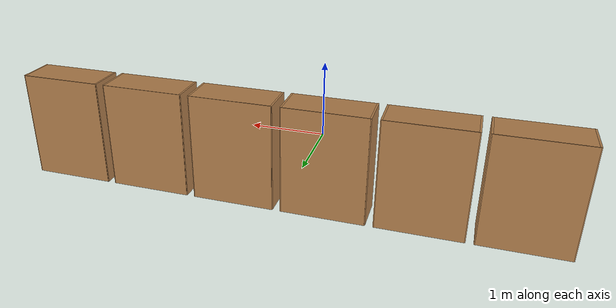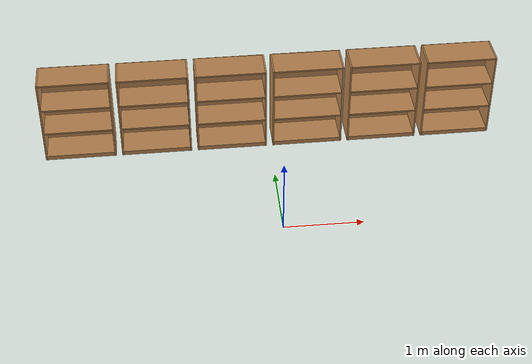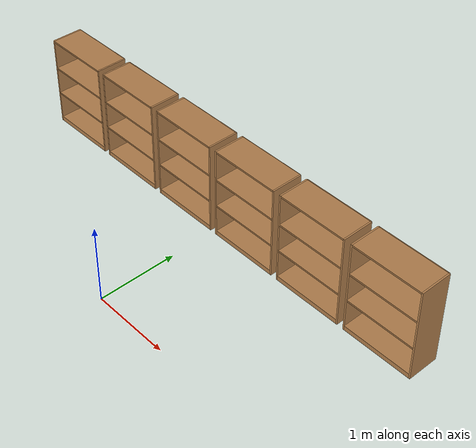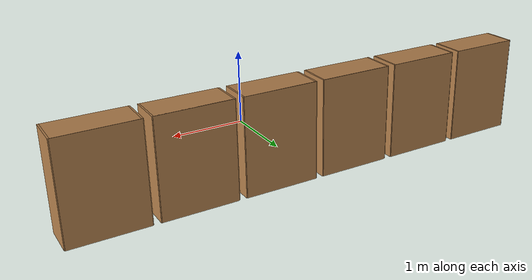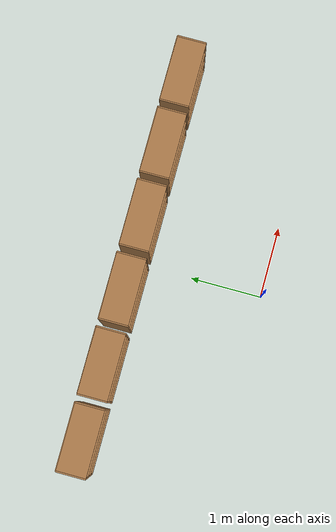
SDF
<sdf version="1.6">
 <model name="5Bookshelves">
  <model name="BookshelfRow_3">
   <model name="bookshelf">
    <static>1</static>
    <link name="link">
     <inertial><mass>1</mass></inertial>
     <collision name="back">
      <pose>0 0.005 0.6 0 -0 0</pose>
      <geometry><box><size>0.9 0.01 1.2</size></box></geometry>
     </collision>
     <visual name="visual1">
      <pose>0 0.005 0.6 0 -0 0</pose>
      <geometry><box><size>0.9 0.01 1.2</size></box></geometry>
      <material>
       <script><uri>file://media/materials/scripts/gazebo.material</uri><name>Gazebo/Wood</name></script>
      </material>
     </visual>
     <collision name="left_side">
      <pose>0.45 -0.195 0.6 0 -0 0</pose>
      <geometry><box><size>0.02 0.4 1.2</size></box></geometry>
     </collision>
     <visual name="visual2">
      <pose>0.45 -0.195 0.6 0 -0 0</pose>
      <geometry><box><size>0.02 0.4 1.2</size></box></geometry>
      <material>
       <script><uri>file://media/materials/scripts/gazebo.material</uri><name>Gazebo/Wood</name></script>
      </material>
     </visual>
     <collision name="right_side">
      <pose>-0.45 -0.195 0.6 0 -0 0</pose>
      <geometry><box><size>0.02 0.4 1.2</size></box></geometry>
     </collision>
     <visual name="visual3">
      <pose>-0.45 -0.195 0.6 0 -0 0</pose>
      <geometry><box><size>0.02 0.4 1.2</size></box></geometry>
      <material>
       <script><uri>file://media/materials/scripts/gazebo.material</uri><name>Gazebo/Wood</name></script>
      </material>
     </visual>
     <collision name="bottom">
      <pose>0 -0.195 0.03 0 -0 0</pose>
      <geometry><box><size>0.88 0.4 0.06</size></box></geometry>
     </collision>
     <visual name="visual4">
      <pose>0 -0.195 0.03 0 -0 0</pose>
      <geometry><box><size>0.88 0.4 0.06</size></box></geometry>
      <material>
       <script><uri>file://media/materials/scripts/gazebo.material</uri><name>Gazebo/Wood</name></script>
      </material>
     </visual>
     <collision name="top">
      <pose>0 -0.195 1.19 0 -0 0</pose>
      <geometry><box><size>0.88 0.4 0.02</size></box></geometry>
     </collision>
     <visual name="visual5">
      <pose>0 -0.195 1.19 0 -0 0</pose>
      <geometry><box><size>0.88 0.4 0.02</size></box></geometry>
      <material>
       <script><uri>file://media/materials/scripts/gazebo.material</uri><name>Gazebo/Wood</name></script>
      </material>
     </visual>
     <collision name="low_shelf">
      <pose>0 -0.195 0.43 0 -0 0</pose>
      <geometry><box><size>0.88 0.4 0.02</size></box></geometry>
     </collision>
     <visual name="visual6">
      <pose>0 -0.195 0.43 0 -0 0</pose>
      <geometry><box><size>0.88 0.4 0.02</size></box></geometry>
      <material>
       <script><uri>file://media/materials/scripts/gazebo.material</uri><name>Gazebo/Wood</name></script>
      </material>
     </visual>
     <collision name="high_shelf">
      <pose>0 -0.195 0.8 0 -0 0</pose>
      <geometry><box><size>0.88 0.4 0.02</size></box></geometry>
     </collision>
     <visual name="visual7">
      <pose>0 -0.195 0.8 0 -0 0</pose>
      <geometry><box><size>0.88 0.4 0.02</size></box></geometry>
      <material>
       <script><uri>file://media/materials/scripts/gazebo.material</uri><name>Gazebo/Wood</name></script>
      </material>
     </visual>
    </link>
    <pose>-2.5 0 0 0 -0 0</pose>
   </model>
   <model name="bookshelf_0">
    <static>1</static>
    <link name="link">
     <inertial><mass>1</mass></inertial>
     <collision name="back">
      <pose>0 0.005 0.6 0 -0 0</pose>
      <geometry><box><size>0.9 0.01 1.2</size></box></geometry>
     </collision>
     <visual name="visual1">
      <pose>0 0.005 0.6 0 -0 0</pose>
      <geometry><box><size>0.9 0.01 1.2</size></box></geometry>
      <material>
       <script><uri>file://media/materials/scripts/gazebo.material</uri><name>Gazebo/Wood</name></script>
      </material>
     </visual>
     <collision name="left_side">
      <pose>0.45 -0.195 0.6 0 -0 0</pose>
      <geometry><box><size>0.02 0.4 1.2</size></box></geometry>
     </collision>
     <visual name="visual2">
      <pose>0.45 -0.195 0.6 0 -0 0</pose>
      <geometry><box><size>0.02 0.4 1.2</size></box></geometry>
      <material>
       <script><uri>file://media/materials/scripts/gazebo.material</uri><name>Gazebo/Wood</name></script>
      </material>
     </visual>
     <collision name="right_side">
      <pose>-0.45 -0.195 0.6 0 -0 0</pose>
      <geometry><box><size>0.02 0.4 1.2</size></box></geometry>
     </collision>
     <visual name="visual3">
      <pose>-0.45 -0.195 0.6 0 -0 0</pose>
      <geometry><box><size>0.02 0.4 1.2</size></box></geometry>
      <material>
       <script><uri>file://media/materials/scripts/gazebo.material</uri><name>Gazebo/Wood</name></script>
      </material>
     </visual>
     <collision name="bottom">
      <pose>0 -0.195 0.03 0 -0 0</pose>
      <geometry><box><size>0.88 0.4 0.06</size></box></geometry>
     </collision>
     <visual name="visual4">
      <pose>0 -0.195 0.03 0 -0 0</pose>
      <geometry><box><size>0.88 0.4 0.06</size></box></geometry>
      <material>
       <script><uri>file://media/materials/scripts/gazebo.material</uri><name>Gazebo/Wood</name></script>
      </material>
     </visual>
     <collision name="top">
      <pose>0 -0.195 1.19 0 -0 0</pose>
      <geometry><box><size>0.88 0.4 0.02</size></box></geometry>
     </collision>
     <visual name="visual5">
      <pose>0 -0.195 1.19 0 -0 0</pose>
      <geometry><box><size>0.88 0.4 0.02</size></box></geometry>
      <material>
       <script><uri>file://media/materials/scripts/gazebo.material</uri><name>Gazebo/Wood</name></script>
      </material>
     </visual>
     <collision name="low_shelf">
      <pose>0 -0.195 0.43 0 -0 0</pose>
      <geometry><box><size>0.88 0.4 0.02</size></box></geometry>
     </collision>
     <visual name="visual6">
      <pose>0 -0.195 0.43 0 -0 0</pose>
      <geometry><box><size>0.88 0.4 0.02</size></box></geometry>
      <material>
       <script><uri>file://media/materials/scripts/gazebo.material</uri><name>Gazebo/Wood</name></script>
      </material>
     </visual>
     <collision name="high_shelf">
      <pose>0 -0.195 0.8 0 -0 0</pose>
      <geometry><box><size>0.88 0.4 0.02</size></box></geometry>
     </collision>
     <visual name="visual7">
      <pose>0 -0.195 0.8 0 -0 0</pose>
      <geometry><box><size>0.88 0.4 0.02</size></box></geometry>
      <material>
       <script><uri>file://media/materials/scripts/gazebo.material</uri><name>Gazebo/Wood</name></script>
      </material>
     </visual>
    </link>
    <pose>-1.5 0 0 0 -0 0</pose>
   </model>
   <model name="bookshelf_1">
    <static>1</static>
    <link name="link">
     <inertial><mass>1</mass></inertial>
     <collision name="back">
      <pose>0 0.005 0.6 0 -0 0</pose>
      <geometry><box><size>0.9 0.01 1.2</size></box></geometry>
     </collision>
     <visual name="visual1">
      <pose>0 0.005 0.6 0 -0 0</pose>
      <geometry><box><size>0.9 0.01 1.2</size></box></geometry>
      <material>
       <script><uri>file://media/materials/scripts/gazebo.material</uri><name>Gazebo/Wood</name></script>
      </material>
     </visual>
     <collision name="left_side">
      <pose>0.45 -0.195 0.6 0 -0 0</pose>
      <geometry><box><size>0.02 0.4 1.2</size></box></geometry>
     </collision>
     <visual name="visual2">
      <pose>0.45 -0.195 0.6 0 -0 0</pose>
      <geometry><box><size>0.02 0.4 1.2</size></box></geometry>
      <material>
       <script><uri>file://media/materials/scripts/gazebo.material</uri><name>Gazebo/Wood</name></script>
      </material>
     </visual>
     <collision name="right_side">
      <pose>-0.45 -0.195 0.6 0 -0 0</pose>
      <geometry><box><size>0.02 0.4 1.2</size></box></geometry>
     </collision>
     <visual name="visual3">
      <pose>-0.45 -0.195 0.6 0 -0 0</pose>
      <geometry><box><size>0.02 0.4 1.2</size></box></geometry>
      <material>
       <script><uri>file://media/materials/scripts/gazebo.material</uri><name>Gazebo/Wood</name></script>
      </material>
     </visual>
     <collision name="bottom">
      <pose>0 -0.195 0.03 0 -0 0</pose>
      <geometry><box><size>0.88 0.4 0.06</size></box></geometry>
     </collision>
     <visual name="visual4">
      <pose>0 -0.195 0.03 0 -0 0</pose>
      <geometry><box><size>0.88 0.4 0.06</size></box></geometry>
      <material>
       <script><uri>file://media/materials/scripts/gazebo.material</uri><name>Gazebo/Wood</name></script>
      </material>
     </visual>
     <collision name="top">
      <pose>0 -0.195 1.19 0 -0 0</pose>
      <geometry><box><size>0.88 0.4 0.02</size></box></geometry>
     </collision>
     <visual name="visual5">
      <pose>0 -0.195 1.19 0 -0 0</pose>
      <geometry><box><size>0.88 0.4 0.02</size></box></geometry>
      <material>
       <script><uri>file://media/materials/scripts/gazebo.material</uri><name>Gazebo/Wood</name></script>
      </material>
     </visual>
     <collision name="low_shelf">
      <pose>0 -0.195 0.43 0 -0 0</pose>
      <geometry><box><size>0.88 0.4 0.02</size></box></geometry>
     </collision>
     <visual name="visual6">
      <pose>0 -0.195 0.43 0 -0 0</pose>
      <geometry><box><size>0.88 0.4 0.02</size></box></geometry>
      <material>
       <script><uri>file://media/materials/scripts/gazebo.material</uri><name>Gazebo/Wood</name></script>
      </material>
     </visual>
     <collision name="high_shelf">
      <pose>0 -0.195 0.8 0 -0 0</pose>
      <geometry><box><size>0.88 0.4 0.02</size></box></geometry>
     </collision>
     <visual name="visual7">
      <pose>0 -0.195 0.8 0 -0 0</pose>
      <geometry><box><size>0.88 0.4 0.02</size></box></geometry>
      <material>
       <script><uri>file://media/materials/scripts/gazebo.material</uri><name>Gazebo/Wood</name></script>
      </material>
     </visual>
    </link>
    <pose>-0.5 0 0 0 -0 0</pose>
   </model>
   <model name="bookshelf_2">
    <static>1</static>
    <link name="link">
     <inertial><mass>1</mass></inertial>
     <collision name="back">
      <pose>0 0.005 0.6 0 -0 0</pose>
      <geometry><box><size>0.9 0.01 1.2</size></box></geometry>
     </collision>
     <visual name="visual1">
      <pose>0 0.005 0.6 0 -0 0</pose>
      <geometry><box><size>0.9 0.01 1.2</size></box></geometry>
      <material>
       <script><uri>file://media/materials/scripts/gazebo.material</uri><name>Gazebo/Wood</name></script>
      </material>
     </visual>
     <collision name="left_side">
      <pose>0.45 -0.195 0.6 0 -0 0</pose>
      <geometry><box><size>0.02 0.4 1.2</size></box></geometry>
     </collision>
     <visual name="visual2">
      <pose>0.45 -0.195 0.6 0 -0 0</pose>
      <geometry><box><size>0.02 0.4 1.2</size></box></geometry>
      <material>
       <script><uri>file://media/materials/scripts/gazebo.material</uri><name>Gazebo/Wood</name></script>
      </material>
     </visual>
     <collision name="right_side">
      <pose>-0.45 -0.195 0.6 0 -0 0</pose>
      <geometry><box><size>0.02 0.4 1.2</size></box></geometry>
     </collision>
     <visual name="visual3">
      <pose>-0.45 -0.195 0.6 0 -0 0</pose>
      <geometry><box><size>0.02 0.4 1.2</size></box></geometry>
      <material>
       <script><uri>file://media/materials/scripts/gazebo.material</uri><name>Gazebo/Wood</name></script>
      </material>
     </visual>
     <collision name="bottom">
      <pose>0 -0.195 0.03 0 -0 0</pose>
      <geometry><box><size>0.88 0.4 0.06</size></box></geometry>
     </collision>
     <visual name="visual4">
      <pose>0 -0.195 0.03 0 -0 0</pose>
      <geometry><box><size>0.88 0.4 0.06</size></box></geometry>
      <material>
       <script><uri>file://media/materials/scripts/gazebo.material</uri><name>Gazebo/Wood</name></script>
      </material>
     </visual>
     <collision name="top">
      <pose>0 -0.195 1.19 0 -0 0</pose>
      <geometry><box><size>0.88 0.4 0.02</size></box></geometry>
     </collision>
     <visual name="visual5">
      <pose>0 -0.195 1.19 0 -0 0</pose>
      <geometry><box><size>0.88 0.4 0.02</size></box></geometry>
      <material>
       <script><uri>file://media/materials/scripts/gazebo.material</uri><name>Gazebo/Wood</name></script>
      </material>
     </visual>
     <collision name="low_shelf">
      <pose>0 -0.195 0.43 0 -0 0</pose>
      <geometry><box><size>0.88 0.4 0.02</size></box></geometry>
     </collision>
     <visual name="visual6">
      <pose>0 -0.195 0.43 0 -0 0</pose>
      <geometry><box><size>0.88 0.4 0.02</size></box></geometry>
      <material>
       <script><uri>file://media/materials/scripts/gazebo.material</uri><name>Gazebo/Wood</name></script>
      </material>
     </visual>
     <collision name="high_shelf">
      <pose>0 -0.195 0.8 0 -0 0</pose>
      <geometry><box><size>0.88 0.4 0.02</size></box></geometry>
     </collision>
     <visual name="visual7">
      <pose>0 -0.195 0.8 0 -0 0</pose>
      <geometry><box><size>0.88 0.4 0.02</size></box></geometry>
      <material>
       <script><uri>file://media/materials/scripts/gazebo.material</uri><name>Gazebo/Wood</name></script>
      </material>
     </visual>
    </link>
    <pose>0.5 0 0 0 -0 0</pose>
   </model>
   <model name="bookshelf_3">
    <static>1</static>
    <link name="link">
     <inertial><mass>1</mass></inertial>
     <collision name="back">
      <pose>0 0.005 0.6 0 -0 0</pose>
      <geometry><box><size>0.9 0.01 1.2</size></box></geometry>
     </collision>
     <visual name="visual1">
      <pose>0 0.005 0.6 0 -0 0</pose>
      <geometry><box><size>0.9 0.01 1.2</size></box></geometry>
      <material>
       <script><uri>file://media/materials/scripts/gazebo.material</uri><name>Gazebo/Wood</name></script>
      </material>
     </visual>
     <collision name="left_side">
      <pose>0.45 -0.195 0.6 0 -0 0</pose>
      <geometry><box><size>0.02 0.4 1.2</size></box></geometry>
     </collision>
     <visual name="visual2">
      <pose>0.45 -0.195 0.6 0 -0 0</pose>
      <geometry><box><size>0.02 0.4 1.2</size></box></geometry>
      <material>
       <script><uri>file://media/materials/scripts/gazebo.material</uri><name>Gazebo/Wood</name></script>
      </material>
     </visual>
     <collision name="right_side">
      <pose>-0.45 -0.195 0.6 0 -0 0</pose>
      <geometry><box><size>0.02 0.4 1.2</size></box></geometry>
     </collision>
     <visual name="visual3">
      <pose>-0.45 -0.195 0.6 0 -0 0</pose>
      <geometry><box><size>0.02 0.4 1.2</size></box></geometry>
      <material>
       <script><uri>file://media/materials/scripts/gazebo.material</uri><name>Gazebo/Wood</name></script>
      </material>
     </visual>
     <collision name="bottom">
      <pose>0 -0.195 0.03 0 -0 0</pose>
      <geometry><box><size>0.88 0.4 0.06</size></box></geometry>
     </collision>
     <visual name="visual4">
      <pose>0 -0.195 0.03 0 -0 0</pose>
      <geometry><box><size>0.88 0.4 0.06</size></box></geometry>
      <material>
       <script><uri>file://media/materials/scripts/gazebo.material</uri><name>Gazebo/Wood</name></script>
      </material>
     </visual>
     <collision name="top">
      <pose>0 -0.195 1.19 0 -0 0</pose>
      <geometry><box><size>0.88 0.4 0.02</size></box></geometry>
     </collision>
     <visual name="visual5">
      <pose>0 -0.195 1.19 0 -0 0</pose>
      <geometry><box><size>0.88 0.4 0.02</size></box></geometry>
      <material>
       <script><uri>file://media/materials/scripts/gazebo.material</uri><name>Gazebo/Wood</name></script>
      </material>
     </visual>
     <collision name="low_shelf">
      <pose>0 -0.195 0.43 0 -0 0</pose>
      <geometry><box><size>0.88 0.4 0.02</size></box></geometry>
     </collision>
     <visual name="visual6">
      <pose>0 -0.195 0.43 0 -0 0</pose>
      <geometry><box><size>0.88 0.4 0.02</size></box></geometry>
      <material>
       <script><uri>file://media/materials/scripts/gazebo.material</uri><name>Gazebo/Wood</name></script>
      </material>
     </visual>
     <collision name="high_shelf">
      <pose>0 -0.195 0.8 0 -0 0</pose>
      <geometry><box><size>0.88 0.4 0.02</size></box></geometry>
     </collision>
     <visual name="visual7">
      <pose>0 -0.195 0.8 0 -0 0</pose>
      <geometry><box><size>0.88 0.4 0.02</size></box></geometry>
      <material>
       <script><uri>file://media/materials/scripts/gazebo.material</uri><name>Gazebo/Wood</name></script>
      </material>
     </visual>
    </link>
    <pose>1.5 0 0 0 -0 0</pose>
   </model>
   <model name="bookshelf_4">
    <static>1</static>
    <link name="link">
     <inertial><mass>1</mass></inertial>
     <collision name="back">
      <pose>0 0.005 0.6 0 -0 0</pose>
      <geometry><box><size>0.9 0.01 1.2</size></box></geometry>
     </collision>
     <visual name="visual1">
      <pose>0 0.005 0.6 0 -0 0</pose>
      <geometry><box><size>0.9 0.01 1.2</size></box></geometry>
      <material>
       <script><uri>file://media/materials/scripts/gazebo.material</uri><name>Gazebo/Wood</name></script>
      </material>
     </visual>
     <collision name="left_side">
      <pose>0.45 -0.195 0.6 0 -0 0</pose>
      <geometry><box><size>0.02 0.4 1.2</size></box></geometry>
     </collision>
     <visual name="visual2">
      <pose>0.45 -0.195 0.6 0 -0 0</pose>
      <geometry><box><size>0.02 0.4 1.2</size></box></geometry>
      <material>
       <script><uri>file://media/materials/scripts/gazebo.material</uri><name>Gazebo/Wood</name></script>
      </material>
     </visual>
     <collision name="right_side">
      <pose>-0.45 -0.195 0.6 0 -0 0</pose>
      <geometry><box><size>0.02 0.4 1.2</size></box></geometry>
     </collision>
     <visual name="visual3">
      <pose>-0.45 -0.195 0.6 0 -0 0</pose>
      <geometry><box><size>0.02 0.4 1.2</size></box></geometry>
      <material>
       <script><uri>file://media/materials/scripts/gazebo.material</uri><name>Gazebo/Wood</name></script>
      </material>
     </visual>
     <collision name="bottom">
      <pose>0 -0.195 0.03 0 -0 0</pose>
      <geometry><box><size>0.88 0.4 0.06</size></box></geometry>
     </collision>
     <visual name="visual4">
      <pose>0 -0.195 0.03 0 -0 0</pose>
      <geometry><box><size>0.88 0.4 0.06</size></box></geometry>
      <material>
       <script><uri>file://media/materials/scripts/gazebo.material</uri><name>Gazebo/Wood</name></script>
      </material>
     </visual>
     <collision name="top">
      <pose>0 -0.195 1.19 0 -0 0</pose>
      <geometry><box><size>0.88 0.4 0.02</size></box></geometry>
     </collision>
     <visual name="visual5">
      <pose>0 -0.195 1.19 0 -0 0</pose>
      <geometry><box><size>0.88 0.4 0.02</size></box></geometry>
      <material>
       <script><uri>file://media/materials/scripts/gazebo.material</uri><name>Gazebo/Wood</name></script>
      </material>
     </visual>
     <collision name="low_shelf">
      <pose>0 -0.195 0.43 0 -0 0</pose>
      <geometry><box><size>0.88 0.4 0.02</size></box></geometry>
     </collision>
     <visual name="visual6">
      <pose>0 -0.195 0.43 0 -0 0</pose>
      <geometry><box><size>0.88 0.4 0.02</size></box></geometry>
      <material>
       <script><uri>file://media/materials/scripts/gazebo.material</uri><name>Gazebo/Wood</name></script>
      </material>
     </visual>
     <collision name="high_shelf">
      <pose>0 -0.195 0.8 0 -0 0</pose>
      <geometry><box><size>0.88 0.4 0.02</size></box></geometry>
     </collision>
     <visual name="visual7">
      <pose>0 -0.195 0.8 0 -0 0</pose>
      <geometry><box><size>0.88 0.4 0.02</size></box></geometry>
      <material>
       <script><uri>file://media/materials/scripts/gazebo.material</uri><name>Gazebo/Wood</name></script>
      </material>
     </visual>
    </link>
    <pose>2.5 0 0 0 -0 0</pose>
   </model>
   <static>0</static>
   <pose>0 2 0 0 -0 0</pose>
  </model>
  <static>0</static>
 </model>
</sdf>
